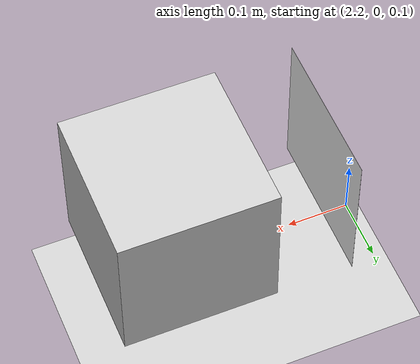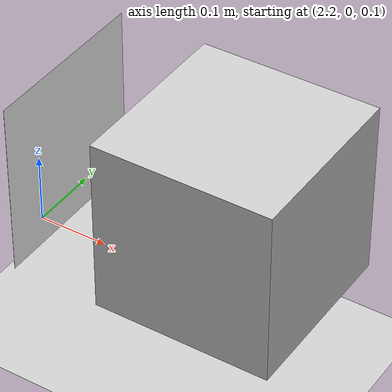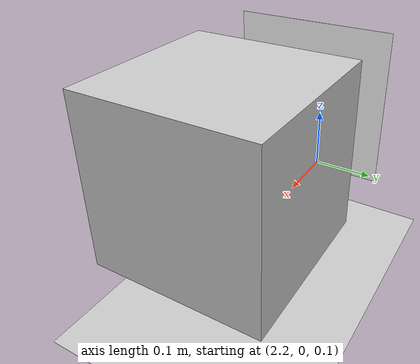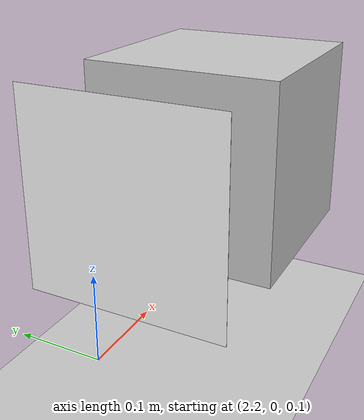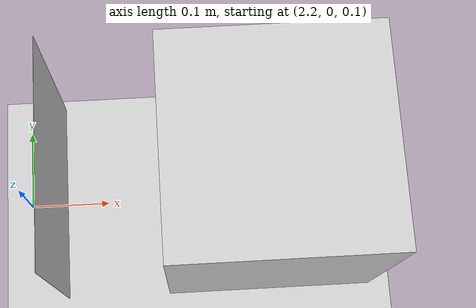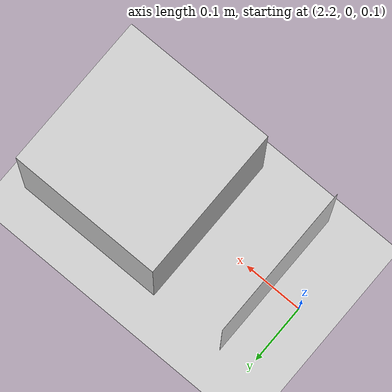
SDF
<?xml version='1.0'?>
<sdf version='1.7'>
  <world name='basic'>

    <plugin
      filename="libignition-gazebo6-user-commands-system.so"
      name="ignition::gazebo::v6::systems::UserCommands"/>
    <plugin
      filename="/usr/lib/x86_64-linux-gnu/libignition-gazebo6-physics-system.so"
      name="ignition::gazebo::v6::systems::Physics"/>
    <plugin
      filename="libignition-gazebo6-scene-broadcaster-system.so"
      name="ignition::gazebo::v6::systems::SceneBroadcaster"/>
    <plugin
      filename="libignition-gazebo6-sensors-system.so"
      name="ignition::gazebo::v6::systems::Sensors">
      <render_engine>ogre2</render_engine>
    </plugin>

    <light name='sun' type='directional'>
      <pose>0 0 10 0 0 0</pose>
      <diffuse>0.8 0.8 0.8 1</diffuse>
      <specular>0.1 0.1 0.1 1</specular>
      <attenuation>
        <range>20</range>
        <constant>0.5</constant>
        <linear>0.01</linear>
        <quadratic>0.001</quadratic>
      </attenuation>
      <direction>-0.5 0.1 -0.9</direction>
      <cast_shadows>false</cast_shadows>
    </light>

    <model name='ground_plane'>
      <static>true</static>
      <link name='link'>
        <collision name='collision'>
          <geometry>
            <plane>
              <normal>0 0 1</normal>
              <size>100 100</size>
            </plane>
          </geometry>
          <surface>
            <friction>
              <ode>
                <mu>100.0</mu>
                <mu2>100.0</mu2>
              </ode>
            </friction>
          </surface>
        </collision>
        <visual name='visual'>
          <geometry>
            <plane>
              <normal>0 0 1</normal>
              <size>100 100</size>
            </plane>
          </geometry>
          <material>
            <ambient>0.8 0.8 0.8 1</ambient>
            <diffuse>0.8 0.8 0.8 1</diffuse>
            <specular>0.8 0.8 0.8 1</specular>
          </material>
        </visual>
      </link>
    </model>

    <model name="custom_box_with_image">
      <pose>2.5 0 0.25 0 0 0</pose>

      <link name="link">
        <visual name="box_visual">
          <geometry>
            <box>
              <size>0.25 0.25 0.25</size>
            </box>
          </geometry>
          <material>
            <ambient>0.8 0.8 0.8 1</ambient>
            <diffuse>0.8 0.8 0.8 1</diffuse>
          </material>
        </visual>

        <visual name="image_visual">
          <pose>-0.251 0 0 0 1.5707 3.14159</pose>
          <geometry>
            <plane>
              <normal>0 0 1</normal>
              <size>0.25 0.25</size>
            </plane>
          </geometry>
          <material>
            <pbr>
              <metal>
                <albedo_map>AprilTag2.png</albedo_map>
                <emissive_map>AprilTag2.png</emissive_map> </metal>
            </pbr>
            <ambient>1 1 1 1</ambient>
            <diffuse>1 1 1 1</diffuse>
            <emissive>1 1 1 1</emissive>
          </material>
        </visual>

        <collision name="collision">
          <geometry>
            <box>
              <size>0.5 0.5 0.5</size>
            </box>
          </geometry>
        </collision>
      </link>
    </model>

  </world>
</sdf>
